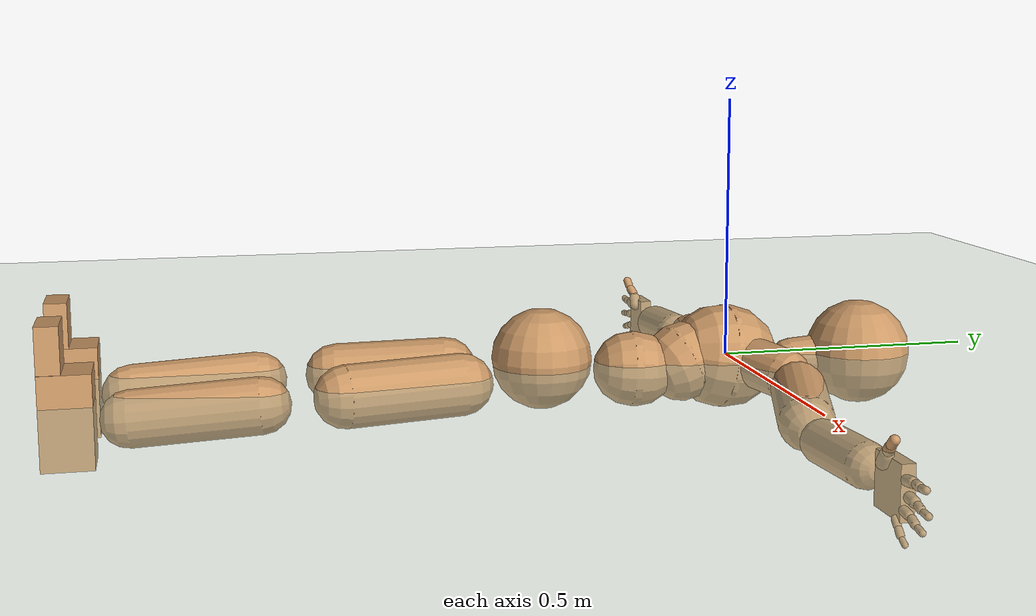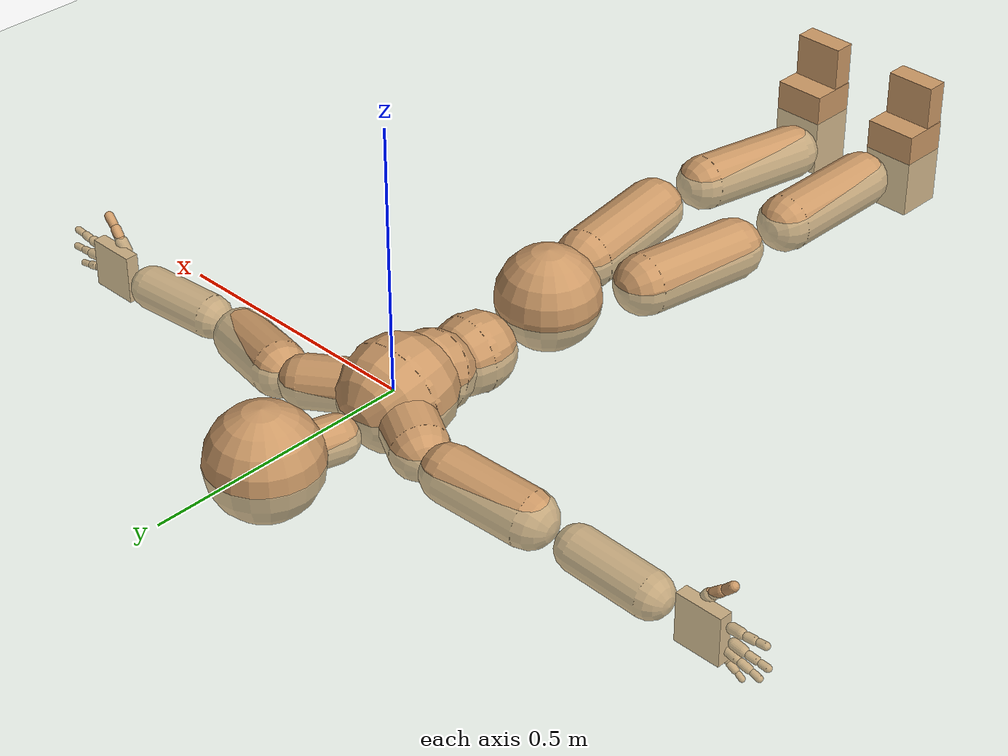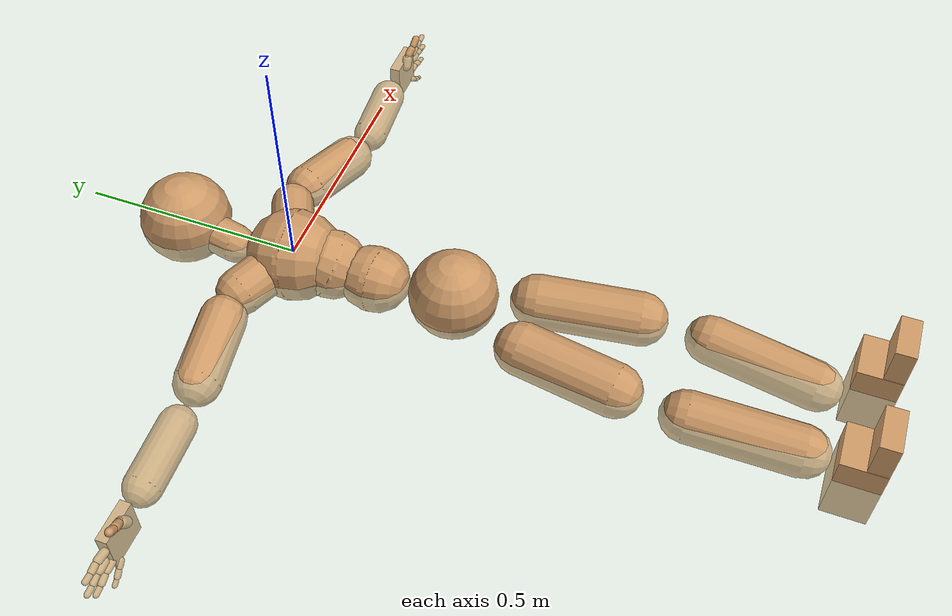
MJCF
<mujoco model="humanoid">
  <compiler coordinate="local"/>
  <default>
    <joint damping="0.0" armature="0.01" stiffness="0.0" limited="true"/>
    <geom conaffinity="1" condim="3" contype="7" margin="0.001" rgba="0.8 0.6 .4 1"/>
  </default>
  <asset>
    <texture type="skybox" builtin="gradient" rgb1=".4 .5 .6" rgb2="0 0 0" width="100" height="100"/>
    <texture builtin="flat" height="1278" mark="cross" markrgb="1 1 1" name="texgeom" random="0.01" rgb1="0.8 0.6 0.4" rgb2="0.8 0.6 0.4" type="cube" width="127"/>
    <texture builtin="checker" height="100" name="texplane" rgb1="0 0 0" rgb2="0.8 0.8 0.8" type="2d" width="100"/>
    <material name="MatPlane" reflectance="0.5" shininess="1" specular="1" texrepeat="60 60" texture="texplane"/>
    <material name="geom" texture="texgeom" texuniform="true"/>
  </asset>
  <worldbody>
    <light cutoff="100" diffuse="1 1 1" dir="-0 0 -1.3" directional="true" exponent="1" pos="0 0 1.3" specular=".1 .1 .1"/>
    <geom conaffinity="1" condim="3" name="floor" pos="0 0 0" rgba="0.8 0.9 0.8 1" size="100 100 .2" type="plane" material="MatPlane"/>
    <body name="Pelvis" pos="0.0028 -0.3736 0.0096">
      <freejoint name="Pelvis"/>
      <geom type="sphere" contype="1" conaffinity="1" density="4629.6296296296305" size="0.0966" pos="0.0000 0.0000 0.0000" name="Pelvis"/>
      <body name="L_Hip" pos="0.0551 -0.0941 -0.0262">
        <joint name="L_Hip_x" type="hinge" pos="0 0 0" axis="1 0 0" user="250 2.5 1 500 10 2" armature="0.01" range="-90.0000 90.0000" damping="0" stiffness="0"/>
        <joint name="L_Hip_y" type="hinge" pos="0 0 0" axis="0 1 0" user="250 2.5 1 500 10 2" armature="0.01" range="-90.0000 90.0000" damping="0" stiffness="0"/>
        <joint name="L_Hip_z" type="hinge" pos="0 0 0" axis="0 0 1" user="250 2.5 1 500 10 2" armature="0.01" range="-90.0000 90.0000" damping="0" stiffness="0"/>
        <geom type="capsule" contype="1" conaffinity="1" density="2040.816327" fromto="0.0111 -0.0729 -0.0012 0.0446 -0.2917 -0.0049" size="0.0586" name="L_Hip"/>
        <body name="L_Knee" pos="0.0557 -0.3647 -0.0061">
          <joint name="L_Knee_x" type="hinge" pos="0 0 0" axis="1 0 0" user="250 2.5 1 500 10 2" armature="0.01" range="-180.0000 180.0000" damping="0" stiffness="0"/>
          <joint name="L_Knee_y" type="hinge" pos="0 0 0" axis="0 1 0" user="250 2.5 1 500 10 2" armature="0.01" range="-5.6250 5.6250" damping="0" stiffness="0"/>
          <joint name="L_Knee_z" type="hinge" pos="0 0 0" axis="0 0 1" user="250 2.5 1 500 10 2" armature="0.01" range="-5.6250 5.6250" damping="0" stiffness="0"/>
          <geom type="capsule" contype="1" conaffinity="1" density="1234.567901" fromto="-0.0087 -0.0768 -0.0060 -0.0348 -0.3072 -0.0238" size="0.0528" name="L_Knee"/>
          <body name="L_Ankle" pos="-0.0435 -0.384 -0.0298">
            <joint name="L_Ankle_x" type="hinge" pos="0 0 0" axis="1 0 0" user="150 2.5 1 500 10 2" armature="0.01" range="-90.0000 90.0000" damping="0" stiffness="0"/>
            <joint name="L_Ankle_y" type="hinge" pos="0 0 0" axis="0 1 0" user="150 2.5 1 500 10 2" armature="0.01" range="-90.0000 90.0000" damping="0" stiffness="0"/>
            <joint name="L_Ankle_z" type="hinge" pos="0 0 0" axis="0 0 1" user="150 2.5 1 500 10 2" armature="0.01" range="-90.0000 90.0000" damping="0" stiffness="0"/>
            <geom type="box" density="446.760103" pos="0.0411 -0.0271 0.0233" size="0.0502 0.046 0.0852" quat="1.0000 0.0000 0.0000 0.0000" name="L_Ankle"/>
            <body name="L_Toe" pos="0.0475 -0.056 0.1179">
              <joint name="L_Toe_x" type="hinge" pos="0 0 0" axis="1 0 0" user="150 1 1 500 1 1" armature="0.01" range="-90.0000 90.0000" damping="0" stiffness="0"/>
              <joint name="L_Toe_y" type="hinge" pos="0 0 0" axis="0 1 0" user="150 1 1 500 1 1" armature="0.01" range="-45.0000 45.0000" damping="0" stiffness="0"/>
              <joint name="L_Toe_z" type="hinge" pos="0 0 0" axis="0 0 1" user="150 1 1 500 1 1" armature="0.01" range="-45.0000 45.0000" damping="0" stiffness="0"/>
              <geom type="box" density="423.318983" pos="-0.0064 0.0035 0.0258" size="0.0484 0.0207 0.0498" quat="1.0000 0.0000 0.0000 0.0000" name="L_Toe"/>
            </body>
          </body>
        </body>
      </body>
      <body name="R_Hip" pos="-0.0599 -0.1061 -0.0209">
        <joint name="R_Hip_x" type="hinge" pos="0 0 0" axis="1 0 0" user="250 2.5 1 500 10 2" armature="0.01" range="-90.0000 90.0000" damping="0" stiffness="0"/>
        <joint name="R_Hip_y" type="hinge" pos="0 0 0" axis="0 1 0" user="250 2.5 1 500 10 2" armature="0.01" range="-90.0000 90.0000" damping="0" stiffness="0"/>
        <joint name="R_Hip_z" type="hinge" pos="0 0 0" axis="0 0 1" user="250 2.5 1 500 10 2" armature="0.01" range="-90.0000 90.0000" damping="0" stiffness="0"/>
        <geom type="capsule" contype="1" conaffinity="1" density="2040.816327" fromto="-0.0090 -0.0695 -0.0028 -0.0360 -0.2780 -0.0111" size="0.058" name="R_Hip"/>
        <body name="R_Knee" pos="-0.0451 -0.3475 -0.0139">
          <joint name="R_Knee_x" type="hinge" pos="0 0 0" axis="1 0 0" user="250 2.5 1 500 10 2" armature="0.01" range="-180.0000 180.0000" damping="0" stiffness="0"/>
          <joint name="R_Knee_y" type="hinge" pos="0 0 0" axis="0 1 0" user="250 2.5 1 500 10 2" armature="0.01" range="-5.6250 5.6250" damping="0" stiffness="0"/>
          <joint name="R_Knee_z" type="hinge" pos="0 0 0" axis="0 0 1" user="250 2.5 1 500 10 2" armature="0.01" range="-5.6250 5.6250" damping="0" stiffness="0"/>
          <geom type="capsule" contype="1" conaffinity="1" density="1234.567901" fromto="0.0031 -0.0783 -0.0037 0.0123 -0.3131 -0.0147" size="0.0545" name="R_Knee"/>
          <body name="R_Ankle" pos="0.0154 -0.3914 -0.0183">
            <joint name="R_Ankle_x" type="hinge" pos="0 0 0" axis="1 0 0" user="150 1 1 500 10 2" armature="0.01" range="-90.0000 90.0000" damping="0" stiffness="0"/>
            <joint name="R_Ankle_y" type="hinge" pos="0 0 0" axis="0 1 0" user="150 1 1 500 10 2" armature="0.01" range="-90.0000 90.0000" damping="0" stiffness="0"/>
            <joint name="R_Ankle_z" type="hinge" pos="0 0 0" axis="0 0 1" user="150 1 1 500 10 2" armature="0.01" range="-90.0000 90.0000" damping="0" stiffness="0"/>
            <geom type="box" density="446.75152" pos="-0.0244 -0.0248 0.0144" size="0.0502 0.046 0.0852" quat="1.0000 0.0000 0.0000 0.0000" name="R_Ankle"/>
            <body name="R_Toe" pos="-0.0388 -0.0565 0.1188">
              <joint name="R_Toe_x" type="hinge" pos="0 0 0" axis="1 0 0" user="150 1 1 500 1 1" armature="0.01" range="-90.0000 90.0000" damping="0" stiffness="0"/>
              <joint name="R_Toe_y" type="hinge" pos="0 0 0" axis="0 1 0" user="150 1 1 500 1 1" armature="0.01" range="-45.0000 45.0000" damping="0" stiffness="0"/>
              <joint name="R_Toe_z" type="hinge" pos="0 0 0" axis="0 0 1" user="150 1 1 500 1 1" armature="0.01" range="-45.0000 45.0000" damping="0" stiffness="0"/>
              <geom type="box" density="423.319355" pos="0.0144 0.0064 0.0159" size="0.0484 0.0207 0.0498" quat="1.0000 0.0000 0.0000 0.0000" name="R_Toe"/>
            </body>
          </body>
        </body>
      </body>
      <body name="Torso" pos="-0.0028 0.1112 -0.0264">
        <joint name="Torso_x" type="hinge" pos="0 0 0" axis="1 0 0" user="500 5 1 500 10 2" armature="0.01" range="-60.0000 60.0000" damping="0" stiffness="0"/>
        <joint name="Torso_y" type="hinge" pos="0 0 0" axis="0 1 0" user="500 5 1 500 10 2" armature="0.01" range="-60.0000 60.0000" damping="0" stiffness="0"/>
        <joint name="Torso_z" type="hinge" pos="0 0 0" axis="0 0 1" user="500 5 1 500 10 2" armature="0.01" range="-60.0000 60.0000" damping="0" stiffness="0"/>
        <geom type="capsule" contype="1" conaffinity="1" density="2040.816327" fromto="0.0042 0.0651 -0.0025 0.0052 0.0795 -0.0031" size="0.0722" name="Torso"/>
        <body name="Spine" pos="0.0094 0.1446 -0.0056">
          <joint name="Spine_x" type="hinge" pos="0 0 0" axis="1 0 0" user="500 5 1 500 10 2" armature="0.01" range="-60.0000 60.0000" damping="0" stiffness="0"/>
          <joint name="Spine_y" type="hinge" pos="0 0 0" axis="0 1 0" user="500 5 1 500 10 2" armature="0.01" range="-60.0000 60.0000" damping="0" stiffness="0"/>
          <joint name="Spine_z" type="hinge" pos="0 0 0" axis="0 0 1" user="500 5 1 500 10 2" armature="0.01" range="-60.0000 60.0000" damping="0" stiffness="0"/>
          <geom type="capsule" contype="1" conaffinity="1" density="2040.816327" fromto="-0.0049 0.0252 0.0113 -0.0060 0.0307 0.0138" size="0.0764" name="Spine"/>
          <body name="Chest" pos="-0.0109 0.0559 0.0251">
            <joint name="Chest_x" type="hinge" pos="0 0 0" axis="1 0 0" user="500 5 1 500 10 2" armature="0.01" range="-60.0000 60.0000" damping="0" stiffness="0"/>
            <joint name="Chest_y" type="hinge" pos="0 0 0" axis="0 1 0" user="500 5 1 500 10 2" armature="0.01" range="-60.0000 60.0000" damping="0" stiffness="0"/>
            <joint name="Chest_z" type="hinge" pos="0 0 0" axis="0 0 1" user="500 5 1 500 10 2" armature="0.01" range="-60.0000 60.0000" damping="0" stiffness="0"/>
            <geom type="capsule" contype="1" conaffinity="1" density="2040.816327" fromto="-0.0020 0.0510 -0.0064 -0.0025 0.0623 -0.0078" size="0.1015" name="Chest"/>
            <body name="Neck" pos="-0.0121 0.1677 -0.0272">
              <joint name="Neck_x" type="hinge" pos="0 0 0" axis="1 0 0" user="150 1 1 250 50 4" armature="0.01" range="-180.0000 180.0000" damping="0" stiffness="0"/>
              <joint name="Neck_y" type="hinge" pos="0 0 0" axis="0 1 0" user="150 1 1 250 50 4" armature="0.01" range="-180.0000 180.0000" damping="0" stiffness="0"/>
              <joint name="Neck_z" type="hinge" pos="0 0 0" axis="0 0 1" user="150 1 1 250 50 4" armature="0.01" range="-180.0000 180.0000" damping="0" stiffness="0"/>
              <geom type="capsule" contype="1" conaffinity="1" density="1000" fromto="0.0050 0.0334 0.0040 0.0200 0.1337 0.0158" size="0.0427" name="Neck"/>
              <body name="Head" pos="0.0251 0.1672 0.0198">
                <joint name="Head_x" type="hinge" pos="0 0 0" axis="1 0 0" user="150 1 1 250 50 4" armature="0.01" range="-90.0000 90.0000" damping="0" stiffness="0"/>
                <joint name="Head_y" type="hinge" pos="0 0 0" axis="0 1 0" user="150 1 1 250 50 4" armature="0.01" range="-90.0000 90.0000" damping="0" stiffness="0"/>
                <joint name="Head_z" type="hinge" pos="0 0 0" axis="0 0 1" user="150 1 1 250 50 4" armature="0.01" range="-90.0000 90.0000" damping="0" stiffness="0"/>
                <geom type="sphere" contype="1" conaffinity="1" density="1000" size="0.1023" pos="0.0000 0.0000 0.0000" name="Head"/>
              </body>
            </body>
            <body name="L_Thorax" pos="0.0459 0.0864 -0.0048">
              <joint name="L_Thorax_x" type="hinge" pos="0 0 0" axis="1 0 0" user="200 2 1 500 50 4" armature="0.01" range="-180.0000 180.0000" damping="0" stiffness="0"/>
              <joint name="L_Thorax_y" type="hinge" pos="0 0 0" axis="0 1 0" user="200 2 1 500 50 4" armature="0.01" range="-180.0000 180.0000" damping="0" stiffness="0"/>
              <joint name="L_Thorax_z" type="hinge" pos="0 0 0" axis="0 0 1" user="200 2 1 500 50 4" armature="0.01" range="-180.0000 180.0000" damping="0" stiffness="0"/>
              <geom type="capsule" contype="1" conaffinity="1" density="1000" fromto="0.0238 0.0115 -0.0030 0.0952 0.0459 -0.0122" size="0.0483" name="L_Thorax"/>
              <body name="L_Shoulder" pos="0.119 0.0574 -0.0152">
                <joint name="L_Shoulder_x" type="hinge" pos="0 0 0" axis="1 0 0" user="200 2 1 500 50 4" armature="0.01" range="-180.0000 180.0000" damping="0" stiffness="0"/>
                <joint name="L_Shoulder_y" type="hinge" pos="0 0 0" axis="0 1 0" user="200 2 1 500 50 4" armature="0.01" range="-180.0000 180.0000" damping="0" stiffness="0"/>
                <joint name="L_Shoulder_z" type="hinge" pos="0 0 0" axis="0 0 1" user="200 2 1 500 50 4" armature="0.01" range="-180.0000 180.0000" damping="0" stiffness="0"/>
                <geom type="capsule" contype="1" conaffinity="1" density="1000" fromto="0.0491 -0.0140 -0.0082 0.1964 -0.0559 -0.0328" size="0.0513" name="L_Shoulder"/>
                <body name="L_Elbow" pos="0.2455 -0.0698 -0.041">
                  <joint name="L_Elbow_x" type="hinge" pos="0 0 0" axis="1 0 0" user="150 1 1 150 10 2" armature="0.01" range="-720.0000 720.0000" damping="0" stiffness="0"/>
                  <joint name="L_Elbow_y" type="hinge" pos="0 0 0" axis="0 1 0" user="150 1 1 150 10 2" armature="0.01" range="-720.0000 720.0000" damping="0" stiffness="0"/>
                  <joint name="L_Elbow_z" type="hinge" pos="0 0 0" axis="0 0 1" user="150 1 1 150 10 2" armature="0.01" range="-720.0000 720.0000" damping="0" stiffness="0"/>
                  <geom type="capsule" contype="1" conaffinity="1" density="1000" fromto="0.0490 0.0044 -0.0002 0.1960 0.0175 -0.0009" size="0.0403" name="L_Elbow"/>
                  <body name="L_Wrist" pos="0.245 0.0218 -0.0012">
                    <joint name="L_Wrist_x" type="hinge" pos="0 0 0" axis="1 0 0" user="100 1 1 150 1 1" armature="0.01" range="-180.0000 180.0000" damping="0" stiffness="0"/>
                    <joint name="L_Wrist_y" type="hinge" pos="0 0 0" axis="0 1 0" user="100 1 1 150 1 1" armature="0.01" range="-180.0000 180.0000" damping="0" stiffness="0"/>
                    <joint name="L_Wrist_z" type="hinge" pos="0 0 0" axis="0 0 1" user="100 1 1 150 1 1" armature="0.01" range="-180.0000 180.0000" damping="0" stiffness="0"/>
                    <geom type="box" density="1211.236859" pos="0.0511 -0.0013 -0.0029" size="0.0472 0.0124 0.0469" quat="1.0000 0.0000 0.0000 0.0000" name="L_Wrist"/>
                    <body name="L_Index1" pos="0.0994 -0.0084 0.02">
                      <joint name="L_Index1_x" type="hinge" pos="0 0 0" axis="1 0 0" user="100 10 1 150" armature="0.01" range="-180.0000 180.0000" damping="0" stiffness="0"/>
                      <joint name="L_Index1_y" type="hinge" pos="0 0 0" axis="0 1 0" user="100 10 1 150" armature="0.01" range="-180.0000 180.0000" damping="0" stiffness="0"/>
                      <joint name="L_Index1_z" type="hinge" pos="0 0 0" axis="0 0 1" user="100 10 1 150" armature="0.01" range="-180.0000 180.0000" damping="0" stiffness="0"/>
                      <geom type="capsule" contype="1" conaffinity="1" density="1000" fromto="0.0064 0.0005 0.0006 0.0255 0.0018 0.0024" size="0.0093" name="L_Index1"/>
                      <body name="L_Index2" pos="0.0319 0.0023 0.003">
                        <joint name="L_Index2_x" type="hinge" pos="0 0 0" axis="1 0 0" user="100 10 1 150" armature="0.01" range="-180.0000 180.0000" damping="0" stiffness="0"/>
                        <joint name="L_Index2_y" type="hinge" pos="0 0 0" axis="0 1 0" user="100 10 1 150" armature="0.01" range="-180.0000 180.0000" damping="0" stiffness="0"/>
                        <joint name="L_Index2_z" type="hinge" pos="0 0 0" axis="0 0 1" user="100 10 1 150" armature="0.01" range="-180.0000 180.0000" damping="0" stiffness="0"/>
                        <geom type="capsule" contype="1" conaffinity="1" density="1000" fromto="0.0045 -0.0005 -0.0000 0.0180 -0.0019 -0.0000" size="0.0077" name="L_Index2"/>
                        <body name="L_Index3" pos="0.0225 -0.0024 0">
                          <joint name="L_Index3_x" type="hinge" pos="0 0 0" axis="1 0 0" user="100 10 1 150" armature="0.01" range="-180.0000 180.0000" damping="0" stiffness="0"/>
                          <joint name="L_Index3_y" type="hinge" pos="0 0 0" axis="0 1 0" user="100 10 1 150" armature="0.01" range="-180.0000 180.0000" damping="0" stiffness="0"/>
                          <joint name="L_Index3_z" type="hinge" pos="0 0 0" axis="0 0 1" user="100 10 1 150" armature="0.01" range="-180.0000 180.0000" damping="0" stiffness="0"/>
                          <geom type="capsule" contype="1" conaffinity="1" density="1000" fromto="0.0049 -0.0001 0.0004 0.0196 -0.0003 0.0016" size="0.0065" name="L_Index3"/>
                        </body>
                      </body>
                    </body>
                    <body name="L_Middle1" pos="0.1069 -0.006 -0.0037">
                      <joint name="L_Middle1_x" type="hinge" pos="0 0 0" axis="1 0 0" user="100 10 1 150" armature="0.01" range="-180.0000 180.0000" damping="0" stiffness="0"/>
                      <joint name="L_Middle1_y" type="hinge" pos="0 0 0" axis="0 1 0" user="100 10 1 150" armature="0.01" range="-180.0000 180.0000" damping="0" stiffness="0"/>
                      <joint name="L_Middle1_z" type="hinge" pos="0 0 0" axis="0 0 1" user="100 10 1 150" armature="0.01" range="-180.0000 180.0000" damping="0" stiffness="0"/>
                      <geom type="capsule" contype="1" conaffinity="1" density="1000" fromto="0.0061 0.0002 -0.0008 0.0244 0.0006 -0.0032" size="0.0095" name="L_Middle1"/>
                      <body name="L_Middle2" pos="0.0306 0.0008 -0.004">
                        <joint name="L_Middle2_x" type="hinge" pos="0 0 0" axis="1 0 0" user="100 10 1 150" armature="0.01" range="-180.0000 180.0000" damping="0" stiffness="0"/>
                        <joint name="L_Middle2_y" type="hinge" pos="0 0 0" axis="0 1 0" user="100 10 1 150" armature="0.01" range="-180.0000 180.0000" damping="0" stiffness="0"/>
                        <joint name="L_Middle2_z" type="hinge" pos="0 0 0" axis="0 0 1" user="100 10 1 150" armature="0.01" range="-180.0000 180.0000" damping="0" stiffness="0"/>
                        <geom type="capsule" contype="1" conaffinity="1" density="1000" fromto="0.0047 -0.0004 -0.0008 0.0187 -0.0017 -0.0033" size="0.0071" name="L_Middle2"/>
                        <body name="L_Middle3" pos="0.0234 -0.0021 -0.0041">
                          <joint name="L_Middle3_x" type="hinge" pos="0 0 0" axis="1 0 0" user="100 10 1 150" armature="0.01" range="-180.0000 180.0000" damping="0" stiffness="0"/>
                          <joint name="L_Middle3_y" type="hinge" pos="0 0 0" axis="0 1 0" user="100 10 1 150" armature="0.01" range="-180.0000 180.0000" damping="0" stiffness="0"/>
                          <joint name="L_Middle3_z" type="hinge" pos="0 0 0" axis="0 0 1" user="100 10 1 150" armature="0.01" range="-180.0000 180.0000" damping="0" stiffness="0"/>
                          <geom type="capsule" contype="1" conaffinity="1" density="1000" fromto="0.0051 -0.0000 -0.0004 0.0203 -0.0001 -0.0017" size="0.0062" name="L_Middle3"/>
                        </body>
                      </body>
                    </body>
                    <body name="L_Pinky1" pos="0.0816 -0.0142 -0.0444">
                      <joint name="L_Pinky1_x" type="hinge" pos="0 0 0" axis="1 0 0" user="100 10 1 150" armature="0.01" range="-180.0000 180.0000" damping="0" stiffness="0"/>
                      <joint name="L_Pinky1_y" type="hinge" pos="0 0 0" axis="0 1 0" user="100 10 1 150" armature="0.01" range="-180.0000 180.0000" damping="0" stiffness="0"/>
                      <joint name="L_Pinky1_z" type="hinge" pos="0 0 0" axis="0 0 1" user="100 10 1 150" armature="0.01" range="-180.0000 180.0000" damping="0" stiffness="0"/>
                      <geom type="capsule" contype="1" conaffinity="1" density="1000" fromto="0.0031 -0.0002 -0.0024 0.0125 -0.0010 -0.0096" size="0.0068" name="L_Pinky1"/>
                      <body name="L_Pinky2" pos="0.0156 -0.0012 -0.0121">
                        <joint name="L_Pinky2_x" type="hinge" pos="0 0 0" axis="1 0 0" user="100 10 1 150" armature="0.01" range="-180.0000 180.0000" damping="0" stiffness="0"/>
                        <joint name="L_Pinky2_y" type="hinge" pos="0 0 0" axis="0 1 0" user="100 10 1 150" armature="0.01" range="-180.0000 180.0000" damping="0" stiffness="0"/>
                        <joint name="L_Pinky2_z" type="hinge" pos="0 0 0" axis="0 0 1" user="100 10 1 150" armature="0.01" range="-180.0000 180.0000" damping="0" stiffness="0"/>
                        <geom type="capsule" contype="1" conaffinity="1" density="1000" fromto="0.0031 -0.0003 -0.0022 0.0125 -0.0014 -0.0090" size="0.0066" name="L_Pinky2"/>
                        <body name="L_Pinky3" pos="0.0156 -0.0017 -0.0112">
                          <joint name="L_Pinky3_x" type="hinge" pos="0 0 0" axis="1 0 0" user="100 10 1 150" armature="0.01" range="-180.0000 180.0000" damping="0" stiffness="0"/>
                          <joint name="L_Pinky3_y" type="hinge" pos="0 0 0" axis="0 1 0" user="100 10 1 150" armature="0.01" range="-180.0000 180.0000" damping="0" stiffness="0"/>
                          <joint name="L_Pinky3_z" type="hinge" pos="0 0 0" axis="0 0 1" user="100 10 1 150" armature="0.01" range="-180.0000 180.0000" damping="0" stiffness="0"/>
                          <geom type="capsule" contype="1" conaffinity="1" density="1000" fromto="0.0035 0.0001 -0.0018 0.0141 0.0002 -0.0074" size="0.005" name="L_Pinky3"/>
                        </body>
                      </body>
                    </body>
                    <body name="L_Ring1" pos="0.095 -0.0088 -0.0276">
                      <joint name="L_Ring1_x" type="hinge" pos="0 0 0" axis="1 0 0" user="100 10 1 150" armature="0.01" range="-180.0000 180.0000" damping="0" stiffness="0"/>
                      <joint name="L_Ring1_y" type="hinge" pos="0 0 0" axis="0 1 0" user="100 10 1 150" armature="0.01" range="-180.0000 180.0000" damping="0" stiffness="0"/>
                      <joint name="L_Ring1_z" type="hinge" pos="0 0 0" axis="0 0 1" user="100 10 1 150" armature="0.01" range="-180.0000 180.0000" damping="0" stiffness="0"/>
                      <geom type="capsule" contype="1" conaffinity="1" density="1000" fromto="0.0056 0.0003 -0.0011 0.0225 0.0012 -0.0042" size="0.0081" name="L_Ring1"/>
                      <body name="L_Ring2" pos="0.0281 0.0015 -0.0053">
                        <joint name="L_Ring2_x" type="hinge" pos="0 0 0" axis="1 0 0" user="100 10 1 150" armature="0.01" range="-180.0000 180.0000" damping="0" stiffness="0"/>
                        <joint name="L_Ring2_y" type="hinge" pos="0 0 0" axis="0 1 0" user="100 10 1 150" armature="0.01" range="-180.0000 180.0000" damping="0" stiffness="0"/>
                        <joint name="L_Ring2_z" type="hinge" pos="0 0 0" axis="0 0 1" user="100 10 1 150" armature="0.01" range="-180.0000 180.0000" damping="0" stiffness="0"/>
                        <geom type="capsule" contype="1" conaffinity="1" density="1000" fromto="0.0046 -0.0003 -0.0014 0.0183 -0.0012 -0.0057" size="0.0075" name="L_Ring2"/>
                        <body name="L_Ring3" pos="0.0228 -0.0015 -0.0071">
                          <joint name="L_Ring3_x" type="hinge" pos="0 0 0" axis="1 0 0" user="100 10 1 150" armature="0.01" range="-180.0000 180.0000" damping="0" stiffness="0"/>
                          <joint name="L_Ring3_y" type="hinge" pos="0 0 0" axis="0 1 0" user="100 10 1 150" armature="0.01" range="-180.0000 180.0000" damping="0" stiffness="0"/>
                          <joint name="L_Ring3_z" type="hinge" pos="0 0 0" axis="0 0 1" user="100 10 1 150" armature="0.01" range="-180.0000 180.0000" damping="0" stiffness="0"/>
                          <geom type="capsule" contype="1" conaffinity="1" density="1000" fromto="0.0050 0.0001 -0.0010 0.0199 0.0004 -0.0041" size="0.0058" name="L_Ring3"/>
                        </body>
                      </body>
                    </body>
                    <body name="L_Thumb1" pos="0.0388 -0.0181 0.0263">
                      <joint name="L_Thumb1_x" type="hinge" pos="0 0 0" axis="1 0 0" user="100 10 1 150" armature="0.01" range="-180.0000 180.0000" damping="0" stiffness="0"/>
                      <joint name="L_Thumb1_y" type="hinge" pos="0 0 0" axis="0 1 0" user="100 10 1 150" armature="0.01" range="-180.0000 180.0000" damping="0" stiffness="0"/>
                      <joint name="L_Thumb1_z" type="hinge" pos="0 0 0" axis="0 0 1" user="100 10 1 150" armature="0.01" range="-180.0000 180.0000" damping="0" stiffness="0"/>
                      <geom type="capsule" contype="1" conaffinity="1" density="1000" fromto="0.0033 0.0002 0.0051 0.0134 0.0009 0.0204" size="0.0121" name="L_Thumb1"/>
                      <body name="L_Thumb2" pos="0.0167 0.0011 0.0255">
                        <joint name="L_Thumb2_x" type="hinge" pos="0 0 0" axis="1 0 0" user="100 10 1 150" armature="0.01" range="-180.0000 180.0000" damping="0" stiffness="0"/>
                        <joint name="L_Thumb2_y" type="hinge" pos="0 0 0" axis="0 1 0" user="100 10 1 150" armature="0.01" range="-180.0000 180.0000" damping="0" stiffness="0"/>
                        <joint name="L_Thumb2_z" type="hinge" pos="0 0 0" axis="0 0 1" user="100 10 1 150" armature="0.01" range="-180.0000 180.0000" damping="0" stiffness="0"/>
                        <geom type="capsule" contype="1" conaffinity="1" density="1000" fromto="0.0041 -0.0010 0.0031 0.0163 -0.0041 0.0125" size="0.0097" name="L_Thumb2"/>
                        <body name="L_Thumb3" pos="0.0204 -0.0051 0.0156">
                          <joint name="L_Thumb3_x" type="hinge" pos="0 0 0" axis="1 0 0" user="100 10 1 150" armature="0.01" range="-180.0000 180.0000" damping="0" stiffness="0"/>
                          <joint name="L_Thumb3_y" type="hinge" pos="0 0 0" axis="0 1 0" user="100 10 1 150" armature="0.01" range="-180.0000 180.0000" damping="0" stiffness="0"/>
                          <joint name="L_Thumb3_z" type="hinge" pos="0 0 0" axis="0 0 1" user="100 10 1 150" armature="0.01" range="-180.0000 180.0000" damping="0" stiffness="0"/>
                          <geom type="capsule" contype="1" conaffinity="1" density="1000" fromto="0.0045 -0.0006 0.0035 0.0179 -0.0025 0.0141" size="0.0088" name="L_Thumb3"/>
                        </body>
                      </body>
                    </body>
                  </body>
                </body>
              </body>
            </body>
            <body name="R_Thorax" pos="-0.0473 0.0858 -0.0108">
              <joint name="R_Thorax_x" type="hinge" pos="0 0 0" axis="1 0 0" user="200 2 1 150 10 2" armature="0.01" range="-180.0000 180.0000" damping="0" stiffness="0"/>
              <joint name="R_Thorax_y" type="hinge" pos="0 0 0" axis="0 1 0" user="200 2 1 150 10 2" armature="0.01" range="-180.0000 180.0000" damping="0" stiffness="0"/>
              <joint name="R_Thorax_z" type="hinge" pos="0 0 0" axis="0 0 1" user="200 2 1 150 10 2" armature="0.01" range="-180.0000 180.0000" damping="0" stiffness="0"/>
              <geom type="capsule" contype="1" conaffinity="1" density="1000" fromto="-0.0205 0.0106 -0.0024 -0.0821 0.0424 -0.0095" size="0.0531" name="R_Thorax"/>
              <body name="R_Shoulder" pos="-0.1026 0.053 -0.0119">
                <joint name="R_Shoulder_x" type="hinge" pos="0 0 0" axis="1 0 0" user="200 2 1 250 10 2" armature="0.01" range="-180.0000 180.0000" damping="0" stiffness="0"/>
                <joint name="R_Shoulder_y" type="hinge" pos="0 0 0" axis="0 1 0" user="200 2 1 250 10 2" armature="0.01" range="-180.0000 180.0000" damping="0" stiffness="0"/>
                <joint name="R_Shoulder_z" type="hinge" pos="0 0 0" axis="0 0 1" user="200 2 1 250 10 2" armature="0.01" range="-180.0000 180.0000" damping="0" stiffness="0"/>
                <geom type="capsule" contype="1" conaffinity="1" density="1000" fromto="-0.0524 -0.0069 -0.0052 -0.2097 -0.0275 -0.0208" size="0.0512" name="R_Shoulder"/>
                <body name="R_Elbow" pos="-0.2621 -0.0343 -0.026">
                  <joint name="R_Elbow_x" type="hinge" pos="0 0 0" axis="1 0 0" user="150 1 1 150 10 2" armature="0.01" range="-720.0000 720.0000" damping="0" stiffness="0"/>
                  <joint name="R_Elbow_y" type="hinge" pos="0 0 0" axis="0 1 0" user="150 1 1 150 10 2" armature="0.01" range="-720.0000 720.0000" damping="0" stiffness="0"/>
                  <joint name="R_Elbow_z" type="hinge" pos="0 0 0" axis="0 0 1" user="150 1 1 150 10 2" armature="0.01" range="-720.0000 720.0000" damping="0" stiffness="0"/>
                  <geom type="capsule" contype="1" conaffinity="1" density="1000" fromto="-0.0485 -0.0011 -0.0028 -0.1938 -0.0044 -0.0110" size="0.0406" name="R_Elbow"/>
                  <body name="R_Wrist" pos="-0.2423 -0.0055 -0.0138">
                    <joint name="R_Wrist_x" type="hinge" pos="0 0 0" axis="1 0 0" user="100 1 1 150 1 1" armature="0.01" range="-180.0000 180.0000" damping="0" stiffness="0"/>
                    <joint name="R_Wrist_y" type="hinge" pos="0 0 0" axis="0 1 0" user="100 1 1 150 1 1" armature="0.01" range="-180.0000 180.0000" damping="0" stiffness="0"/>
                    <joint name="R_Wrist_z" type="hinge" pos="0 0 0" axis="0 0 1" user="100 1 1 150 1 1" armature="0.01" range="-180.0000 180.0000" damping="0" stiffness="0"/>
                    <geom type="box" density="1240.422925" pos="-0.0524 -0.0044 -0.0026" size="0.0445 0.0124 0.0469" quat="1.0000 0.0000 0.0000 0.0000" name="R_Wrist"/>
                    <body name="R_Index1" pos="-0.0975 -0.0115 0.0202">
                      <joint name="R_Index1_x" type="hinge" pos="0 0 0" axis="1 0 0" user="100 10 1 150" armature="0.01" range="-180.0000 180.0000" damping="0" stiffness="0"/>
                      <joint name="R_Index1_y" type="hinge" pos="0 0 0" axis="0 1 0" user="100 10 1 150" armature="0.01" range="-180.0000 180.0000" damping="0" stiffness="0"/>
                      <joint name="R_Index1_z" type="hinge" pos="0 0 0" axis="0 0 1" user="100 10 1 150" armature="0.01" range="-180.0000 180.0000" damping="0" stiffness="0"/>
                      <geom type="capsule" contype="1" conaffinity="1" density="1000" fromto="-0.0064 0.0005 0.0006 -0.0255 0.0018 0.0024" size="0.0093" name="R_Index1"/>
                      <body name="R_Index2" pos="-0.0319 0.0023 0.003">
                        <joint name="R_Index2_x" type="hinge" pos="0 0 0" axis="1 0 0" user="100 10 1 150" armature="0.01" range="-180.0000 180.0000" damping="0" stiffness="0"/>
                        <joint name="R_Index2_y" type="hinge" pos="0 0 0" axis="0 1 0" user="100 10 1 150" armature="0.01" range="-180.0000 180.0000" damping="0" stiffness="0"/>
                        <joint name="R_Index2_z" type="hinge" pos="0 0 0" axis="0 0 1" user="100 10 1 150" armature="0.01" range="-180.0000 180.0000" damping="0" stiffness="0"/>
                        <geom type="capsule" contype="1" conaffinity="1" density="1000" fromto="-0.0045 -0.0005 -0.0000 -0.0180 -0.0019 -0.0000" size="0.0077" name="R_Index2"/>
                        <body name="R_Index3" pos="-0.0225 -0.0024 0">
                          <joint name="R_Index3_x" type="hinge" pos="0 0 0" axis="1 0 0" user="100 10 1 150" armature="0.01" range="-180.0000 180.0000" damping="0" stiffness="0"/>
                          <joint name="R_Index3_y" type="hinge" pos="0 0 0" axis="0 1 0" user="100 10 1 150" armature="0.01" range="-180.0000 180.0000" damping="0" stiffness="0"/>
                          <joint name="R_Index3_z" type="hinge" pos="0 0 0" axis="0 0 1" user="100 10 1 150" armature="0.01" range="-180.0000 180.0000" damping="0" stiffness="0"/>
                          <geom type="capsule" contype="1" conaffinity="1" density="1000" fromto="-0.0041 -0.0001 0.0004 -0.0164 -0.0003 0.0016" size="0.0068" name="R_Index3"/>
                        </body>
                      </body>
                    </body>
                    <body name="R_Middle1" pos="-0.105 -0.0091 -0.0035">
                      <joint name="R_Middle1_x" type="hinge" pos="0 0 0" axis="1 0 0" user="100 10 1 150" armature="0.01" range="-180.0000 180.0000" damping="0" stiffness="0"/>
                      <joint name="R_Middle1_y" type="hinge" pos="0 0 0" axis="0 1 0" user="100 10 1 150" armature="0.01" range="-180.0000 180.0000" damping="0" stiffness="0"/>
                      <joint name="R_Middle1_z" type="hinge" pos="0 0 0" axis="0 0 1" user="100 10 1 150" armature="0.01" range="-180.0000 180.0000" damping="0" stiffness="0"/>
                      <geom type="capsule" contype="1" conaffinity="1" density="1000" fromto="-0.0061 0.0002 -0.0008 -0.0244 0.0006 -0.0032" size="0.0095" name="R_Middle1"/>
                      <body name="R_Middle2" pos="-0.0305 0.0008 -0.004">
                        <joint name="R_Middle2_x" type="hinge" pos="0 0 0" axis="1 0 0" user="100 10 1 150" armature="0.01" range="-180.0000 180.0000" damping="0" stiffness="0"/>
                        <joint name="R_Middle2_y" type="hinge" pos="0 0 0" axis="0 1 0" user="100 10 1 150" armature="0.01" range="-180.0000 180.0000" damping="0" stiffness="0"/>
                        <joint name="R_Middle2_z" type="hinge" pos="0 0 0" axis="0 0 1" user="100 10 1 150" armature="0.01" range="-180.0000 180.0000" damping="0" stiffness="0"/>
                        <geom type="capsule" contype="1" conaffinity="1" density="1000" fromto="-0.0047 -0.0004 -0.0008 -0.0187 -0.0017 -0.0033" size="0.0071" name="R_Middle2"/>
                        <body name="R_Middle3" pos="-0.0234 -0.0021 -0.0041">
                          <joint name="R_Middle3_x" type="hinge" pos="0 0 0" axis="1 0 0" user="100 10 1 150" armature="0.01" range="-180.0000 180.0000" damping="0" stiffness="0"/>
                          <joint name="R_Middle3_y" type="hinge" pos="0 0 0" axis="0 1 0" user="100 10 1 150" armature="0.01" range="-180.0000 180.0000" damping="0" stiffness="0"/>
                          <joint name="R_Middle3_z" type="hinge" pos="0 0 0" axis="0 0 1" user="100 10 1 150" armature="0.01" range="-180.0000 180.0000" damping="0" stiffness="0"/>
                          <geom type="capsule" contype="1" conaffinity="1" density="1000" fromto="-0.0043 -0.0000 -0.0004 -0.0171 -0.0001 -0.0017" size="0.0065" name="R_Middle3"/>
                        </body>
                      </body>
                    </body>
                    <body name="R_Pinky1" pos="-0.0797 -0.0173 -0.0441">
                      <joint name="R_Pinky1_x" type="hinge" pos="0 0 0" axis="1 0 0" user="100 10 1 150" armature="0.01" range="-180.0000 180.0000" damping="0" stiffness="0"/>
                      <joint name="R_Pinky1_y" type="hinge" pos="0 0 0" axis="0 1 0" user="100 10 1 150" armature="0.01" range="-180.0000 180.0000" damping="0" stiffness="0"/>
                      <joint name="R_Pinky1_z" type="hinge" pos="0 0 0" axis="0 0 1" user="100 10 1 150" armature="0.01" range="-180.0000 180.0000" damping="0" stiffness="0"/>
                      <geom type="capsule" contype="1" conaffinity="1" density="1000" fromto="-0.0031 -0.0002 -0.0024 -0.0125 -0.0010 -0.0096" size="0.0068" name="R_Pinky1"/>
                      <body name="R_Pinky2" pos="-0.0156 -0.0012 -0.0121">
                        <joint name="R_Pinky2_x" type="hinge" pos="0 0 0" axis="1 0 0" user="100 10 1 150" armature="0.01" range="-180.0000 180.0000" damping="0" stiffness="0"/>
                        <joint name="R_Pinky2_y" type="hinge" pos="0 0 0" axis="0 1 0" user="100 10 1 150" armature="0.01" range="-180.0000 180.0000" damping="0" stiffness="0"/>
                        <joint name="R_Pinky2_z" type="hinge" pos="0 0 0" axis="0 0 1" user="100 10 1 150" armature="0.01" range="-180.0000 180.0000" damping="0" stiffness="0"/>
                        <geom type="capsule" contype="1" conaffinity="1" density="1000" fromto="-0.0031 -0.0003 -0.0022 -0.0125 -0.0014 -0.0090" size="0.0066" name="R_Pinky2"/>
                        <body name="R_Pinky3" pos="-0.0156 -0.0017 -0.0112">
                          <joint name="R_Pinky3_x" type="hinge" pos="0 0 0" axis="1 0 0" user="100 10 1 150" armature="0.01" range="-180.0000 180.0000" damping="0" stiffness="0"/>
                          <joint name="R_Pinky3_y" type="hinge" pos="0 0 0" axis="0 1 0" user="100 10 1 150" armature="0.01" range="-180.0000 180.0000" damping="0" stiffness="0"/>
                          <joint name="R_Pinky3_z" type="hinge" pos="0 0 0" axis="0 0 1" user="100 10 1 150" armature="0.01" range="-180.0000 180.0000" damping="0" stiffness="0"/>
                          <geom type="capsule" contype="1" conaffinity="1" density="1000" fromto="-0.0027 0.0001 -0.0018 -0.0109 0.0002 -0.0074" size="0.0053" name="R_Pinky3"/>
                        </body>
                      </body>
                    </body>
                    <body name="R_Ring1" pos="-0.0931 -0.0119 -0.0273">
                      <joint name="R_Ring1_x" type="hinge" pos="0 0 0" axis="1 0 0" user="100 10 1 150" armature="0.01" range="-180.0000 180.0000" damping="0" stiffness="0"/>
                      <joint name="R_Ring1_y" type="hinge" pos="0 0 0" axis="0 1 0" user="100 10 1 150" armature="0.01" range="-180.0000 180.0000" damping="0" stiffness="0"/>
                      <joint name="R_Ring1_z" type="hinge" pos="0 0 0" axis="0 0 1" user="100 10 1 150" armature="0.01" range="-180.0000 180.0000" damping="0" stiffness="0"/>
                      <geom type="capsule" contype="1" conaffinity="1" density="1000" fromto="-0.0056 0.0003 -0.0011 -0.0225 0.0012 -0.0042" size="0.0081" name="R_Ring1"/>
                      <body name="R_Ring2" pos="-0.0281 0.0015 -0.0053">
                        <joint name="R_Ring2_x" type="hinge" pos="0 0 0" axis="1 0 0" user="100 10 1 150" armature="0.01" range="-180.0000 180.0000" damping="0" stiffness="0"/>
                        <joint name="R_Ring2_y" type="hinge" pos="0 0 0" axis="0 1 0" user="100 10 1 150" armature="0.01" range="-180.0000 180.0000" damping="0" stiffness="0"/>
                        <joint name="R_Ring2_z" type="hinge" pos="0 0 0" axis="0 0 1" user="100 10 1 150" armature="0.01" range="-180.0000 180.0000" damping="0" stiffness="0"/>
                        <geom type="capsule" contype="1" conaffinity="1" density="1000" fromto="-0.0046 -0.0003 -0.0014 -0.0183 -0.0012 -0.0057" size="0.0075" name="R_Ring2"/>
                        <body name="R_Ring3" pos="-0.0228 -0.0015 -0.0071">
                          <joint name="R_Ring3_x" type="hinge" pos="0 0 0" axis="1 0 0" user="100 10 1 150" armature="0.01" range="-180.0000 180.0000" damping="0" stiffness="0"/>
                          <joint name="R_Ring3_y" type="hinge" pos="0 0 0" axis="0 1 0" user="100 10 1 150" armature="0.01" range="-180.0000 180.0000" damping="0" stiffness="0"/>
                          <joint name="R_Ring3_z" type="hinge" pos="0 0 0" axis="0 0 1" user="100 10 1 150" armature="0.01" range="-180.0000 180.0000" damping="0" stiffness="0"/>
                          <geom type="capsule" contype="1" conaffinity="1" density="1000" fromto="-0.0042 0.0001 -0.0010 -0.0167 0.0004 -0.0041" size="0.0061" name="R_Ring3"/>
                        </body>
                      </body>
                    </body>
                    <body name="R_Thumb1" pos="-0.0369 -0.0212 0.0266">
                      <joint name="R_Thumb1_x" type="hinge" pos="0 0 0" axis="1 0 0" user="100 10 1 150" armature="0.01" range="-180.0000 180.0000" damping="0" stiffness="0"/>
                      <joint name="R_Thumb1_y" type="hinge" pos="0 0 0" axis="0 1 0" user="100 10 1 150" armature="0.01" range="-180.0000 180.0000" damping="0" stiffness="0"/>
                      <joint name="R_Thumb1_z" type="hinge" pos="0 0 0" axis="0 0 1" user="100 10 1 150" armature="0.01" range="-180.0000 180.0000" damping="0" stiffness="0"/>
                      <geom type="capsule" contype="1" conaffinity="1" density="1000" fromto="-0.0033 0.0002 0.0051 -0.0134 0.0009 0.0204" size="0.0121" name="R_Thumb1"/>
                      <body name="R_Thumb2" pos="-0.0167 0.0011 0.0255">
                        <joint name="R_Thumb2_x" type="hinge" pos="0 0 0" axis="1 0 0" user="100 10 1 150" armature="0.01" range="-180.0000 180.0000" damping="0" stiffness="0"/>
                        <joint name="R_Thumb2_y" type="hinge" pos="0 0 0" axis="0 1 0" user="100 10 1 150" armature="0.01" range="-180.0000 180.0000" damping="0" stiffness="0"/>
                        <joint name="R_Thumb2_z" type="hinge" pos="0 0 0" axis="0 0 1" user="100 10 1 150" armature="0.01" range="-180.0000 180.0000" damping="0" stiffness="0"/>
                        <geom type="capsule" contype="1" conaffinity="1" density="1000" fromto="-0.0041 -0.0010 0.0031 -0.0163 -0.0041 0.0125" size="0.0097" name="R_Thumb2"/>
                        <body name="R_Thumb3" pos="-0.0204 -0.0051 0.0156">
                          <joint name="R_Thumb3_x" type="hinge" pos="0 0 0" axis="1 0 0" user="100 10 1 150" armature="0.01" range="-180.0000 180.0000" damping="0" stiffness="0"/>
                          <joint name="R_Thumb3_y" type="hinge" pos="0 0 0" axis="0 1 0" user="100 10 1 150" armature="0.01" range="-180.0000 180.0000" damping="0" stiffness="0"/>
                          <joint name="R_Thumb3_z" type="hinge" pos="0 0 0" axis="0 0 1" user="100 10 1 150" armature="0.01" range="-180.0000 180.0000" damping="0" stiffness="0"/>
                          <geom type="capsule" contype="1" conaffinity="1" density="1000" fromto="-0.0037 -0.0006 0.0035 -0.0147 -0.0025 0.0141" size="0.009" name="R_Thumb3"/>
                        </body>
                      </body>
                    </body>
                  </body>
                </body>
              </body>
            </body>
          </body>
        </body>
      </body>
    </body>
  </worldbody>
  <actuator>
    <motor name="L_Hip_x" joint="L_Hip_x" gear="1"/>
    <motor name="L_Hip_y" joint="L_Hip_y" gear="1"/>
    <motor name="L_Hip_z" joint="L_Hip_z" gear="1"/>
    <motor name="L_Knee_x" joint="L_Knee_x" gear="1"/>
    <motor name="L_Knee_y" joint="L_Knee_y" gear="1"/>
    <motor name="L_Knee_z" joint="L_Knee_z" gear="1"/>
    <motor name="L_Ankle_x" joint="L_Ankle_x" gear="1"/>
    <motor name="L_Ankle_y" joint="L_Ankle_y" gear="1"/>
    <motor name="L_Ankle_z" joint="L_Ankle_z" gear="1"/>
    <motor name="L_Toe_x" joint="L_Toe_x" gear="1"/>
    <motor name="L_Toe_y" joint="L_Toe_y" gear="1"/>
    <motor name="L_Toe_z" joint="L_Toe_z" gear="1"/>
    <motor name="R_Hip_x" joint="R_Hip_x" gear="1"/>
    <motor name="R_Hip_y" joint="R_Hip_y" gear="1"/>
    <motor name="R_Hip_z" joint="R_Hip_z" gear="1"/>
    <motor name="R_Knee_x" joint="R_Knee_x" gear="1"/>
    <motor name="R_Knee_y" joint="R_Knee_y" gear="1"/>
    <motor name="R_Knee_z" joint="R_Knee_z" gear="1"/>
    <motor name="R_Ankle_x" joint="R_Ankle_x" gear="1"/>
    <motor name="R_Ankle_y" joint="R_Ankle_y" gear="1"/>
    <motor name="R_Ankle_z" joint="R_Ankle_z" gear="1"/>
    <motor name="R_Toe_x" joint="R_Toe_x" gear="1"/>
    <motor name="R_Toe_y" joint="R_Toe_y" gear="1"/>
    <motor name="R_Toe_z" joint="R_Toe_z" gear="1"/>
    <motor name="Torso_x" joint="Torso_x" gear="1"/>
    <motor name="Torso_y" joint="Torso_y" gear="1"/>
    <motor name="Torso_z" joint="Torso_z" gear="1"/>
    <motor name="Spine_x" joint="Spine_x" gear="1"/>
    <motor name="Spine_y" joint="Spine_y" gear="1"/>
    <motor name="Spine_z" joint="Spine_z" gear="1"/>
    <motor name="Chest_x" joint="Chest_x" gear="1"/>
    <motor name="Chest_y" joint="Chest_y" gear="1"/>
    <motor name="Chest_z" joint="Chest_z" gear="1"/>
    <motor name="Neck_x" joint="Neck_x" gear="1"/>
    <motor name="Neck_y" joint="Neck_y" gear="1"/>
    <motor name="Neck_z" joint="Neck_z" gear="1"/>
    <motor name="Head_x" joint="Head_x" gear="1"/>
    <motor name="Head_y" joint="Head_y" gear="1"/>
    <motor name="Head_z" joint="Head_z" gear="1"/>
    <motor name="L_Thorax_x" joint="L_Thorax_x" gear="1"/>
    <motor name="L_Thorax_y" joint="L_Thorax_y" gear="1"/>
    <motor name="L_Thorax_z" joint="L_Thorax_z" gear="1"/>
    <motor name="L_Shoulder_x" joint="L_Shoulder_x" gear="1"/>
    <motor name="L_Shoulder_y" joint="L_Shoulder_y" gear="1"/>
    <motor name="L_Shoulder_z" joint="L_Shoulder_z" gear="1"/>
    <motor name="L_Elbow_x" joint="L_Elbow_x" gear="1"/>
    <motor name="L_Elbow_y" joint="L_Elbow_y" gear="1"/>
    <motor name="L_Elbow_z" joint="L_Elbow_z" gear="1"/>
    <motor name="L_Wrist_x" joint="L_Wrist_x" gear="1"/>
    <motor name="L_Wrist_y" joint="L_Wrist_y" gear="1"/>
    <motor name="L_Wrist_z" joint="L_Wrist_z" gear="1"/>
    <motor name="L_Index1_x" joint="L_Index1_x" gear="1"/>
    <motor name="L_Index1_y" joint="L_Index1_y" gear="1"/>
    <motor name="L_Index1_z" joint="L_Index1_z" gear="1"/>
    <motor name="L_Index2_x" joint="L_Index2_x" gear="1"/>
    <motor name="L_Index2_y" joint="L_Index2_y" gear="1"/>
    <motor name="L_Index2_z" joint="L_Index2_z" gear="1"/>
    <motor name="L_Index3_x" joint="L_Index3_x" gear="1"/>
    <motor name="L_Index3_y" joint="L_Index3_y" gear="1"/>
    <motor name="L_Index3_z" joint="L_Index3_z" gear="1"/>
    <motor name="L_Middle1_x" joint="L_Middle1_x" gear="1"/>
    <motor name="L_Middle1_y" joint="L_Middle1_y" gear="1"/>
    <motor name="L_Middle1_z" joint="L_Middle1_z" gear="1"/>
    <motor name="L_Middle2_x" joint="L_Middle2_x" gear="1"/>
    <motor name="L_Middle2_y" joint="L_Middle2_y" gear="1"/>
    <motor name="L_Middle2_z" joint="L_Middle2_z" gear="1"/>
    <motor name="L_Middle3_x" joint="L_Middle3_x" gear="1"/>
    <motor name="L_Middle3_y" joint="L_Middle3_y" gear="1"/>
    <motor name="L_Middle3_z" joint="L_Middle3_z" gear="1"/>
    <motor name="L_Pinky1_x" joint="L_Pinky1_x" gear="1"/>
    <motor name="L_Pinky1_y" joint="L_Pinky1_y" gear="1"/>
    <motor name="L_Pinky1_z" joint="L_Pinky1_z" gear="1"/>
    <motor name="L_Pinky2_x" joint="L_Pinky2_x" gear="1"/>
    <motor name="L_Pinky2_y" joint="L_Pinky2_y" gear="1"/>
    <motor name="L_Pinky2_z" joint="L_Pinky2_z" gear="1"/>
    <motor name="L_Pinky3_x" joint="L_Pinky3_x" gear="1"/>
    <motor name="L_Pinky3_y" joint="L_Pinky3_y" gear="1"/>
    <motor name="L_Pinky3_z" joint="L_Pinky3_z" gear="1"/>
    <motor name="L_Ring1_x" joint="L_Ring1_x" gear="1"/>
    <motor name="L_Ring1_y" joint="L_Ring1_y" gear="1"/>
    <motor name="L_Ring1_z" joint="L_Ring1_z" gear="1"/>
    <motor name="L_Ring2_x" joint="L_Ring2_x" gear="1"/>
    <motor name="L_Ring2_y" joint="L_Ring2_y" gear="1"/>
    <motor name="L_Ring2_z" joint="L_Ring2_z" gear="1"/>
    <motor name="L_Ring3_x" joint="L_Ring3_x" gear="1"/>
    <motor name="L_Ring3_y" joint="L_Ring3_y" gear="1"/>
    <motor name="L_Ring3_z" joint="L_Ring3_z" gear="1"/>
    <motor name="L_Thumb1_x" joint="L_Thumb1_x" gear="1"/>
    <motor name="L_Thumb1_y" joint="L_Thumb1_y" gear="1"/>
    <motor name="L_Thumb1_z" joint="L_Thumb1_z" gear="1"/>
    <motor name="L_Thumb2_x" joint="L_Thumb2_x" gear="1"/>
    <motor name="L_Thumb2_y" joint="L_Thumb2_y" gear="1"/>
    <motor name="L_Thumb2_z" joint="L_Thumb2_z" gear="1"/>
    <motor name="L_Thumb3_x" joint="L_Thumb3_x" gear="1"/>
    <motor name="L_Thumb3_y" joint="L_Thumb3_y" gear="1"/>
    <motor name="L_Thumb3_z" joint="L_Thumb3_z" gear="1"/>
    <motor name="R_Thorax_x" joint="R_Thorax_x" gear="1"/>
    <motor name="R_Thorax_y" joint="R_Thorax_y" gear="1"/>
    <motor name="R_Thorax_z" joint="R_Thorax_z" gear="1"/>
    <motor name="R_Shoulder_x" joint="R_Shoulder_x" gear="1"/>
    <motor name="R_Shoulder_y" joint="R_Shoulder_y" gear="1"/>
    <motor name="R_Shoulder_z" joint="R_Shoulder_z" gear="1"/>
    <motor name="R_Elbow_x" joint="R_Elbow_x" gear="1"/>
    <motor name="R_Elbow_y" joint="R_Elbow_y" gear="1"/>
    <motor name="R_Elbow_z" joint="R_Elbow_z" gear="1"/>
    <motor name="R_Wrist_x" joint="R_Wrist_x" gear="1"/>
    <motor name="R_Wrist_y" joint="R_Wrist_y" gear="1"/>
    <motor name="R_Wrist_z" joint="R_Wrist_z" gear="1"/>
    <motor name="R_Index1_x" joint="R_Index1_x" gear="1"/>
    <motor name="R_Index1_y" joint="R_Index1_y" gear="1"/>
    <motor name="R_Index1_z" joint="R_Index1_z" gear="1"/>
    <motor name="R_Index2_x" joint="R_Index2_x" gear="1"/>
    <motor name="R_Index2_y" joint="R_Index2_y" gear="1"/>
    <motor name="R_Index2_z" joint="R_Index2_z" gear="1"/>
    <motor name="R_Index3_x" joint="R_Index3_x" gear="1"/>
    <motor name="R_Index3_y" joint="R_Index3_y" gear="1"/>
    <motor name="R_Index3_z" joint="R_Index3_z" gear="1"/>
    <motor name="R_Middle1_x" joint="R_Middle1_x" gear="1"/>
    <motor name="R_Middle1_y" joint="R_Middle1_y" gear="1"/>
    <motor name="R_Middle1_z" joint="R_Middle1_z" gear="1"/>
    <motor name="R_Middle2_x" joint="R_Middle2_x" gear="1"/>
    <motor name="R_Middle2_y" joint="R_Middle2_y" gear="1"/>
    <motor name="R_Middle2_z" joint="R_Middle2_z" gear="1"/>
    <motor name="R_Middle3_x" joint="R_Middle3_x" gear="1"/>
    <motor name="R_Middle3_y" joint="R_Middle3_y" gear="1"/>
    <motor name="R_Middle3_z" joint="R_Middle3_z" gear="1"/>
    <motor name="R_Pinky1_x" joint="R_Pinky1_x" gear="1"/>
    <motor name="R_Pinky1_y" joint="R_Pinky1_y" gear="1"/>
    <motor name="R_Pinky1_z" joint="R_Pinky1_z" gear="1"/>
    <motor name="R_Pinky2_x" joint="R_Pinky2_x" gear="1"/>
    <motor name="R_Pinky2_y" joint="R_Pinky2_y" gear="1"/>
    <motor name="R_Pinky2_z" joint="R_Pinky2_z" gear="1"/>
    <motor name="R_Pinky3_x" joint="R_Pinky3_x" gear="1"/>
    <motor name="R_Pinky3_y" joint="R_Pinky3_y" gear="1"/>
    <motor name="R_Pinky3_z" joint="R_Pinky3_z" gear="1"/>
    <motor name="R_Ring1_x" joint="R_Ring1_x" gear="1"/>
    <motor name="R_Ring1_y" joint="R_Ring1_y" gear="1"/>
    <motor name="R_Ring1_z" joint="R_Ring1_z" gear="1"/>
    <motor name="R_Ring2_x" joint="R_Ring2_x" gear="1"/>
    <motor name="R_Ring2_y" joint="R_Ring2_y" gear="1"/>
    <motor name="R_Ring2_z" joint="R_Ring2_z" gear="1"/>
    <motor name="R_Ring3_x" joint="R_Ring3_x" gear="1"/>
    <motor name="R_Ring3_y" joint="R_Ring3_y" gear="1"/>
    <motor name="R_Ring3_z" joint="R_Ring3_z" gear="1"/>
    <motor name="R_Thumb1_x" joint="R_Thumb1_x" gear="1"/>
    <motor name="R_Thumb1_y" joint="R_Thumb1_y" gear="1"/>
    <motor name="R_Thumb1_z" joint="R_Thumb1_z" gear="1"/>
    <motor name="R_Thumb2_x" joint="R_Thumb2_x" gear="1"/>
    <motor name="R_Thumb2_y" joint="R_Thumb2_y" gear="1"/>
    <motor name="R_Thumb2_z" joint="R_Thumb2_z" gear="1"/>
    <motor name="R_Thumb3_x" joint="R_Thumb3_x" gear="1"/>
    <motor name="R_Thumb3_y" joint="R_Thumb3_y" gear="1"/>
    <motor name="R_Thumb3_z" joint="R_Thumb3_z" gear="1"/>
  </actuator>
  <contact>
    <exclude body1="Torso" body2="Chest"/>
    <exclude body1="Head" body2="Chest"/>
    <exclude body1="R_Knee" body2="R_Toe"/>
    <exclude body1="R_Knee" body2="L_Ankle"/>
    <exclude body1="R_Knee" body2="L_Toe"/>
    <exclude body1="L_Knee" body2="L_Toe"/>
    <exclude body1="L_Knee" body2="R_Ankle"/>
    <exclude body1="L_Knee" body2="R_Toe"/>
    <exclude body1="L_Shoulder" body2="Chest"/>
    <exclude body1="R_Shoulder" body2="Chest"/>
  </contact>
  <sensor/>
  <size njmax="700" nconmax="700"/>
</mujoco>
